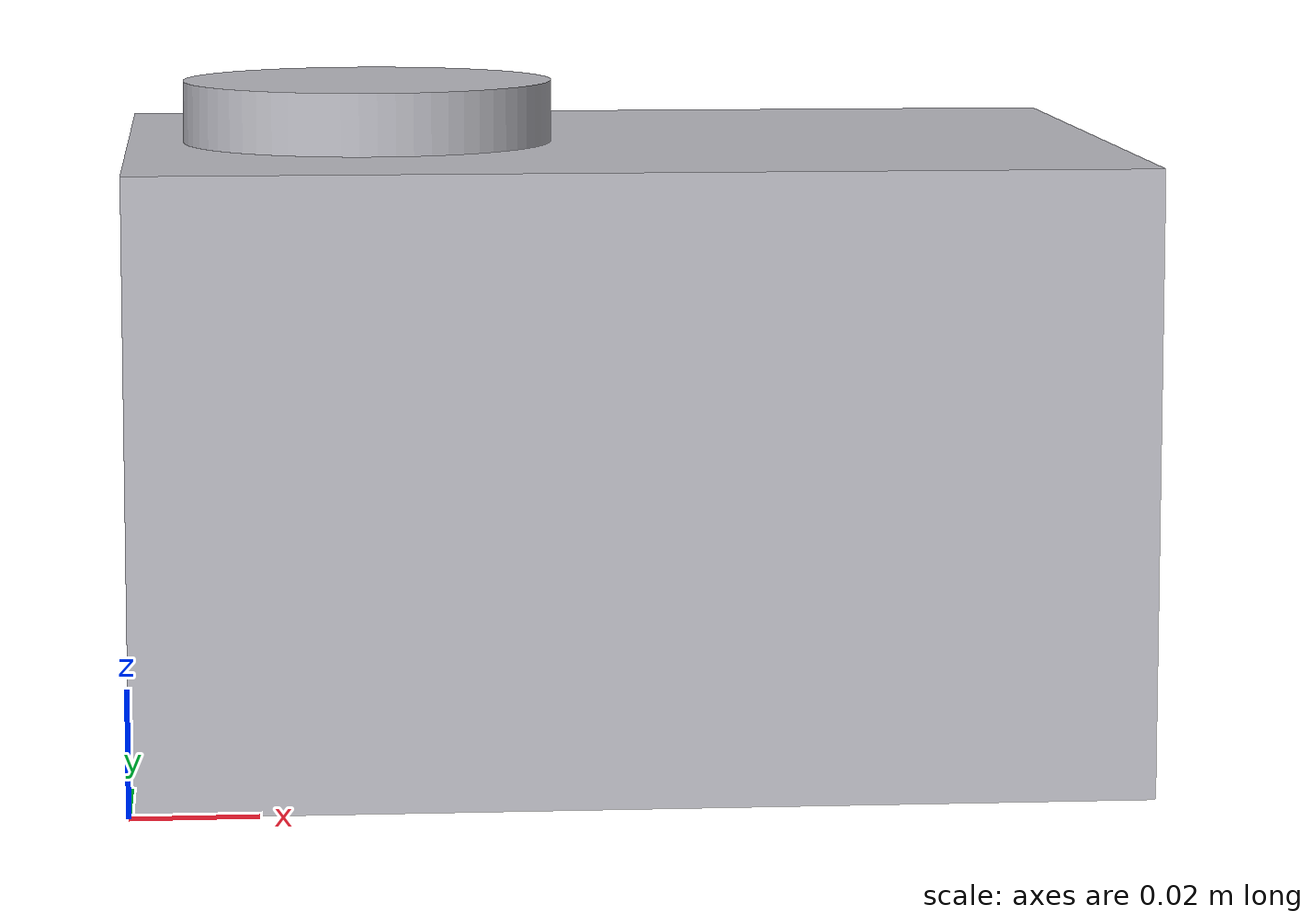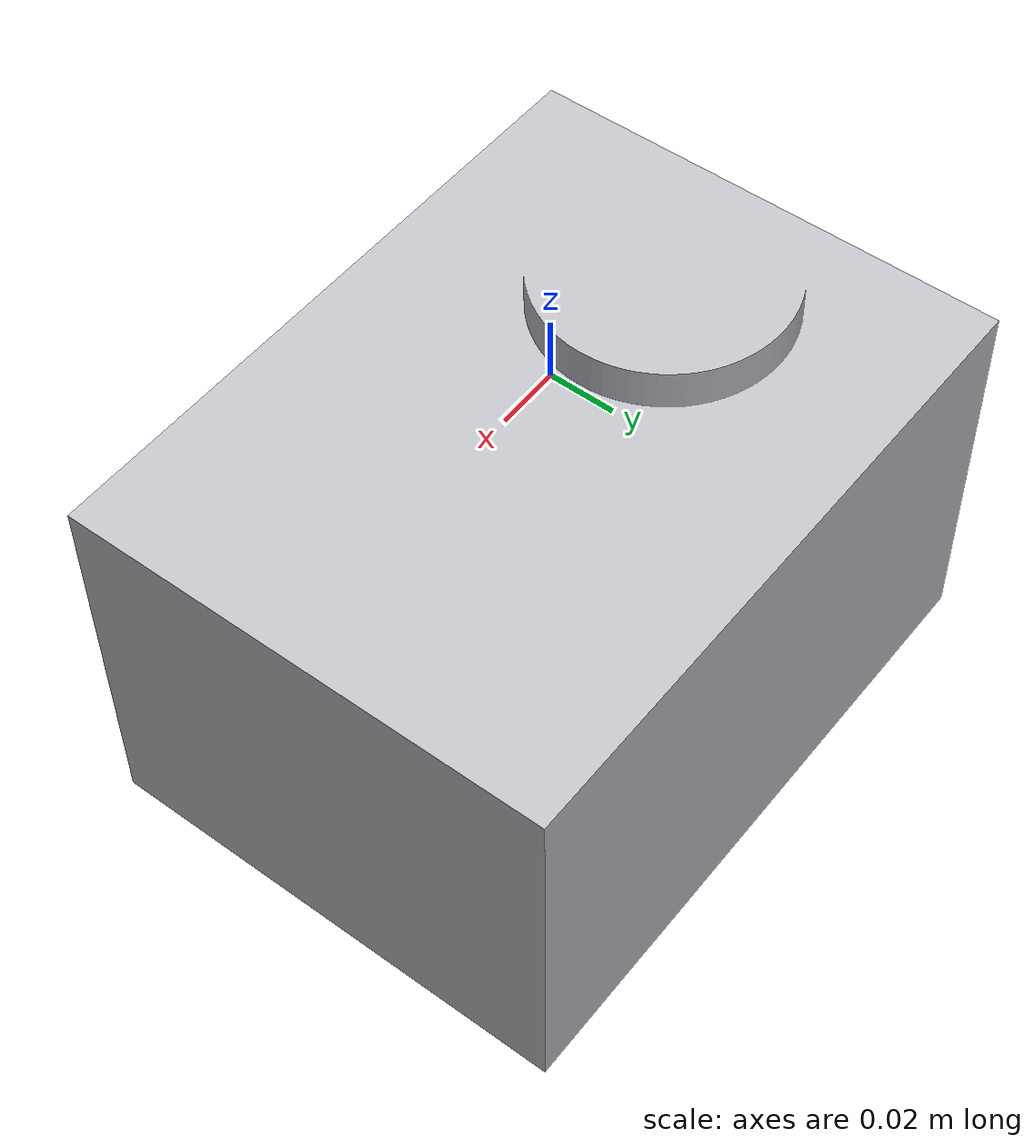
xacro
<?xml version="1.0" ?>
<robot name="URDF" xmlns:xacro="http://www.ros.org/wiki/xacro">

<xacro:include filename="$(find URDF_description)/urdf/materials.xacro" />
<xacro:include filename="$(find URDF_description)/urdf/URDF.trans" />
<xacro:include filename="$(find URDF_description)/urdf/URDF.gazebo" />
<link name="base_link">
  <inertial>
    <origin xyz="0.07901405555218022 0.0600975 0.05010159170370789" rpy="0 0 0"/>
    <mass value="15.035180794978768"/>
    <inertia ixx="0.030531" iyy="0.044355" izz="0.049591" ixy="-0.0" iyz="0.0" ixz="0.000482"/>
  </inertial>
  <visual>
    <origin xyz="0 0 0" rpy="0 0 0"/>
    <geometry>
      <mesh filename="file://$(find URDF_description)/meshes/base_link.stl" scale="0.001 0.001 0.001"/>
    </geometry>
    <material name="silver"/>
  </visual>
  <collision>
    <origin xyz="0 0 0" rpy="0 0 0"/>
    <geometry>
      <mesh filename="file://$(find URDF_description)/meshes/base_link.stl" scale="0.001 0.001 0.001"/>
    </geometry>
  </collision>
</link>

</robot>

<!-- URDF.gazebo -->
<robot name="URDF" xmlns:xacro="http://www.ros.org/wiki/xacro" >

<xacro:property name="body_color" value="Gazebo/Silver" />

<gazebo>
  <plugin name="control" filename="libgazebo_ros_control.so"/>
</gazebo>
<gazebo reference="base_link">
  <material>${body_color}</material>
  <mu1>0.2</mu1>
  <mu2>0.2</mu2>
  <self_collide>true</self_collide>
  <gravity>true</gravity>
</gazebo>

</robot>
